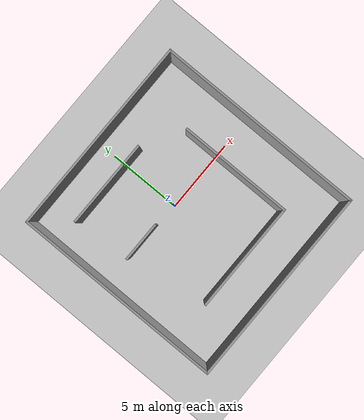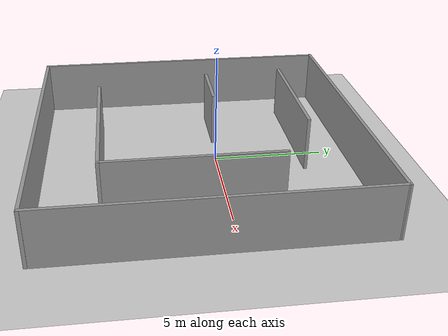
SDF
<sdf version="1.7">
 <world name="default">
  <light name="sun" type="directional">
   <pose>0 0 10 0 -0 0</pose>
   <diffuse>0.8 0.8 0.8 1</diffuse>
   <specular>0.2 0.2 0.2 1</specular>
   <attenuation>
    <range>1000</range>
    <constant>0.9</constant>
    <linear>0.01</linear>
    <quadratic>0.001</quadratic>
   </attenuation>
   <direction>-0.5 0.1 -0.9</direction>
   <spot><inner_angle>0</inner_angle><outer_angle>0</outer_angle><falloff>0</falloff></spot>
  </light>
  <model name="ground_plane">
   <static>1</static>
   <link name="link">
    <collision name="collision">
     <geometry><plane><normal>0 0 1</normal><size>100 100</size></plane></geometry>
     <surface>
      <contact><collide_bitmask>65535</collide_bitmask></contact>
      <friction><ode><mu>100</mu><mu2>50</mu2></ode></friction>
     </surface>
    </collision>
    <visual name="visual">
     <cast_shadows>0</cast_shadows>
     <geometry><plane><normal>0 0 1</normal><size>100 100</size></plane></geometry>
     <material>
      <script><uri>file://media/materials/scripts/gazebo.material</uri><name>Gazebo/Grey</name></script>
     </material>
    </visual>
   </link>
  </model>
  <gravity>0 0 -9.8</gravity>
  <magnetic_field>6e-06 2.3e-05 -4.2e-05</magnetic_field>
  <atmosphere type="adiabatic"/>
  <physics type="ode">
   <max_step_size>0.001</max_step_size>
   <real_time_factor>1</real_time_factor>
   <real_time_update_rate>1000</real_time_update_rate>
  </physics>
  <scene><ambient>0.4 0.4 0.4 1</ambient><background>0.7 0.7 0.7 1</background><shadows>1</shadows></scene>
  <spherical_coordinates>
   <surface_model>EARTH_WGS84</surface_model>
   <latitude_deg>0</latitude_deg>
   <longitude_deg>0</longitude_deg>
   <elevation>0</elevation>
   <heading_deg>0</heading_deg>
  </spherical_coordinates>
  <model name="maze">
   <pose>0.299643 -0.8901 0 0 -0 0</pose>
   <link name="Wall_104">
    <collision name="Wall_104_Collision">
     <geometry><box><size>13.5949 0.15 2.5</size></box></geometry>
     <pose>0 0 1.25 0 -0 0</pose>
    </collision>
    <visual name="Wall_104_Visual">
     <pose>0 0 1.25 0 -0 0</pose>
     <geometry><box><size>13.5949 0.15 2.5</size></box></geometry>
     <material>
      <script><uri>file://media/materials/scripts/gazebo.material</uri><name>Gazebo/Grey</name></script>
      <ambient>1 1 1 1</ambient>
     </material>
     <meta><layer>0</layer></meta>
    </visual>
    <pose>-0.001104 7.05037 0 0 -0 0.002099</pose>
   </link>
   <link name="Wall_11">
    <collision name="Wall_11_Collision">
     <geometry><box><size>14.25 0.15 2.5</size></box></geometry>
     <pose>0 0 1.25 0 -0 0</pose>
    </collision>
    <visual name="Wall_11_Visual">
     <pose>0 0 1.25 0 -0 0</pose>
     <geometry><box><size>14.25 0.15 2.5</size></box></geometry>
     <material>
      <script><uri>file://media/materials/scripts/gazebo.material</uri><name>Gazebo/Grey</name></script>
      <ambient>1 1 1 1</ambient>
     </material>
     <meta><layer>0</layer></meta>
    </visual>
    <pose>-6.72354 -0.013743 0 0 -0 1.5708</pose>
   </link>
   <link name="Wall_19">
    <collision name="Wall_19_Collision">
     <geometry><box><size>13.5 0.15 2.5</size></box></geometry>
     <pose>0 0 1.25 0 -0 0</pose>
    </collision>
    <visual name="Wall_19_Visual">
     <pose>0 0 1.25 0 -0 0</pose>
     <geometry><box><size>13.5 0.15 2.5</size></box></geometry>
     <material>
      <script><uri>file://media/materials/scripts/gazebo.material</uri><name>Gazebo/Grey</name></script>
      <ambient>1 1 1 1</ambient>
     </material>
     <meta><layer>0</layer></meta>
    </visual>
    <pose>0.048697 -7.06464 0 0 -0 0</pose>
   </link>
   <link name="Wall_28">
    <collision name="Wall_28_Collision">
     <geometry><box><size>14.25 0.15 2.5</size></box></geometry>
     <pose>0 0 1.25 0 -0 0</pose>
    </collision>
    <visual name="Wall_28_Visual">
     <pose>0 0 1.25 0 -0 0</pose>
     <geometry><box><size>14.25 0.15 2.5</size></box></geometry>
     <material>
      <script><uri>file://media/materials/scripts/gazebo.material</uri><name>Gazebo/Grey</name></script>
      <ambient>1 1 1 1</ambient>
     </material>
     <meta><layer>0</layer></meta>
    </visual>
    <pose>6.72133 0.014482 0 0 -0 -1.5708</pose>
   </link>
   <link name="Wall_38">
    <collision name="Wall_38_Collision">
     <geometry><box><size>2.75 0.15 2.5</size></box></geometry>
     <pose>0 0 1.25 0 -0 0</pose>
    </collision>
    <visual name="Wall_38_Visual">
     <pose>0 0 1.25 0 -0 0</pose>
     <geometry><box><size>2.75 0.15 2.5</size></box></geometry>
     <material>
      <script><uri>file://media/materials/scripts/gazebo.material</uri><name>Gazebo/Grey</name></script>
      <ambient>1 1 1 1</ambient>
     </material>
     <meta><layer>0</layer></meta>
    </visual>
    <pose>-3.25861 1.00717 0 0 -0 0</pose>
   </link>
   <link name="Wall_40">
    <collision name="Wall_40_Collision">
     <geometry><box><size>6 0.15 2.5</size></box></geometry>
     <pose>0 0 1.25 0 -0 0</pose>
    </collision>
    <visual name="Wall_40_Visual">
     <pose>0 0 1.25 0 -0 0</pose>
     <geometry><box><size>6 0.15 2.5</size></box></geometry>
     <material>
      <script><uri>file://media/materials/scripts/gazebo.material</uri><name>Gazebo/Grey</name></script>
      <ambient>1 1 1 1</ambient>
     </material>
     <meta><layer>0</layer></meta>
    </visual>
    <pose>-1.90466 4.8286 0 0 -0 0</pose>
   </link>
   <link name="Wall_44">
    <collision name="Wall_44_Collision">
     <geometry><box><size>7.75 0.15 2.5</size></box></geometry>
     <pose>0 0 1.25 0 -0 0</pose>
    </collision>
    <visual name="Wall_44_Visual">
     <pose>0 0 1.25 0 -0 0</pose>
     <geometry><box><size>7.75 0.15 2.5</size></box></geometry>
     <material>
      <script><uri>file://media/materials/scripts/gazebo.material</uri><name>Gazebo/Grey</name></script>
      <ambient>1 1 1 1</ambient>
     </material>
     <meta><layer>0</layer></meta>
    </visual>
    <pose>3.72308 -0.572676 0 0 -0 -1.5708</pose>
   </link>
   <link name="Wall_48">
    <collision name="Wall_48_Collision">
     <geometry><box><size>7.5 0.15 2.5</size></box></geometry>
     <pose>0 0 1.25 0 -0 0</pose>
    </collision>
    <visual name="Wall_48_Visual">
     <pose>0 0 1.25 0 -0 0</pose>
     <geometry><box><size>7.5 0.15 2.5</size></box></geometry>
     <material>
      <script><uri>file://media/materials/scripts/gazebo.material</uri><name>Gazebo/Grey</name></script>
      <ambient>1 1 1 1</ambient>
     </material>
     <meta><layer>0</layer></meta>
    </visual>
    <pose>0.048079 -4.37268 0 0 -0 3.14159</pose>
   </link>
   <static>1</static>
  </model>
 </world>
</sdf>
